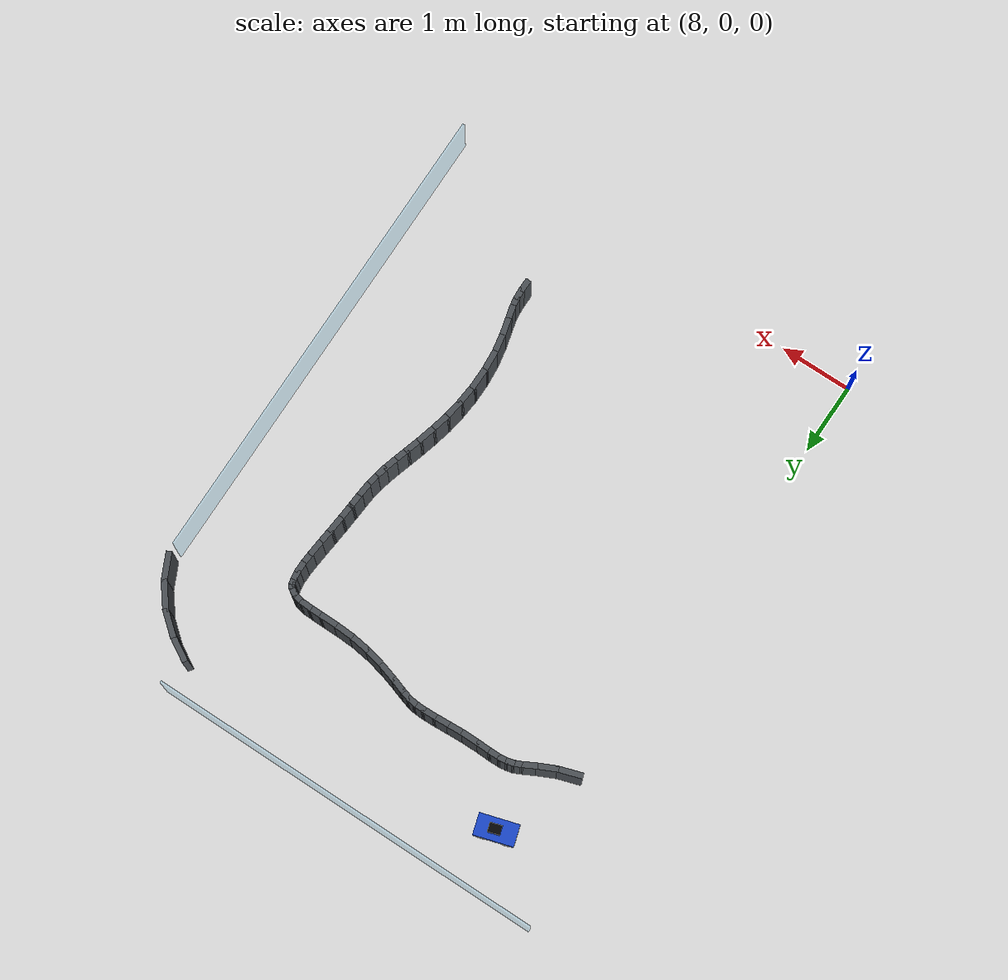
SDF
<sdf version="1.10">
 <world name="kookmin_xycar_track">
  <model name="slam_map">
   <static>true</static>
   <link name="route_wall_0000">
    <pose>8.857803 6.620077 0.400000 0 0 -2.708154841</pose>
    <collision name="collision">
     <geometry><box><size>0.144515 0.080000 0.800000</size></box></geometry>
    </collision>
    <visual name="visual">
     <geometry><box><size>0.144515 0.080000 0.800000</size></box></geometry>
     <material>
      <ambient>0.3000 0.3200 0.3400 1.0000</ambient>
      <diffuse>0.3000 0.3200 0.3400 1.0000</diffuse>
     </material>
    </visual>
   </link>
   <link name="route_wall_0001">
    <pose>8.728666 6.554908 0.400000 0 0 -2.655052837</pose>
    <collision name="collision">
     <geometry><box><size>0.224877 0.080000 0.800000</size></box></geometry>
    </collision>
    <visual name="visual">
     <geometry><box><size>0.224877 0.080000 0.800000</size></box></geometry>
     <material>
      <ambient>0.3000 0.3200 0.3400 1.0000</ambient>
      <diffuse>0.3000 0.3200 0.3400 1.0000</diffuse>
     </material>
    </visual>
   </link>
   <link name="route_wall_0002">
    <pose>8.525304 6.454000 0.400000 0 0 -2.698798356</pose>
    <collision name="collision">
     <geometry><box><size>0.309270 0.080000 0.800000</size></box></geometry>
    </collision>
    <visual name="visual">
     <geometry><box><size>0.309270 0.080000 0.800000</size></box></geometry>
     <material>
      <ambient>0.3000 0.3200 0.3400 1.0000</ambient>
      <diffuse>0.3000 0.3200 0.3400 1.0000</diffuse>
     </material>
    </visual>
   </link>
   <link name="route_wall_0003">
    <pose>8.250433 6.347098 0.400000 0 0 -2.830795801</pose>
    <collision name="collision">
     <geometry><box><size>0.361861 0.080000 0.800000</size></box></geometry>
    </collision>
    <visual name="visual">
     <geometry><box><size>0.361861 0.080000 0.800000</size></box></geometry>
     <material>
      <ambient>0.3000 0.3200 0.3400 1.0000</ambient>
      <diffuse>0.3000 0.3200 0.3400 1.0000</diffuse>
     </material>
    </visual>
   </link>
   <link name="route_wall_0165">
    <pose>12.215228 1.356631 0.400000 0 0 1.542945428</pose>
    <collision name="collision">
     <geometry><box><size>0.179662 0.080000 0.800000</size></box></geometry>
    </collision>
    <visual name="visual">
     <geometry><box><size>0.179662 0.080000 0.800000</size></box></geometry>
     <material>
      <ambient>0.3000 0.3200 0.3400 1.0000</ambient>
      <diffuse>0.3000 0.3200 0.3400 1.0000</diffuse>
     </material>
    </visual>
   </link>
   <link name="route_wall_0166">
    <pose>12.213796 1.489847 0.400000 0 0 1.623991036</pose>
    <collision name="collision">
     <geometry><box><size>0.167005 0.080000 0.800000</size></box></geometry>
    </collision>
    <visual name="visual">
     <geometry><box><size>0.167005 0.080000 0.800000</size></box></geometry>
     <material>
      <ambient>0.3000 0.3200 0.3400 1.0000</ambient>
      <diffuse>0.3000 0.3200 0.3400 1.0000</diffuse>
     </material>
    </visual>
   </link>
   <link name="route_wall_0167">
    <pose>12.201055 1.614097 0.400000 0 0 1.723530631</pose>
    <collision name="collision">
     <geometry><box><size>0.163108 0.080000 0.800000</size></box></geometry>
    </collision>
    <visual name="visual">
     <geometry><box><size>0.163108 0.080000 0.800000</size></box></geometry>
     <material>
      <ambient>0.3000 0.3200 0.3400 1.0000</ambient>
      <diffuse>0.3000 0.3200 0.3400 1.0000</diffuse>
     </material>
    </visual>
   </link>
   <link name="route_wall_0168">
    <pose>12.172343 1.751310 0.400000 0 0 1.818897459</pose>
    <collision name="collision">
     <geometry><box><size>0.197574 0.080000 0.800000</size></box></geometry>
    </collision>
    <visual name="visual">
     <geometry><box><size>0.197574 0.080000 0.800000</size></box></geometry>
     <material>
      <ambient>0.3000 0.3200 0.3400 1.0000</ambient>
      <diffuse>0.3000 0.3200 0.3400 1.0000</diffuse>
     </material>
    </visual>
   </link>
   <link name="route_wall_0169">
    <pose>12.125037 1.935905 0.400000 0 0 1.823616914</pose>
    <collision name="collision">
     <geometry><box><size>0.263547 0.080000 0.800000</size></box></geometry>
    </collision>
    <visual name="visual">
     <geometry><box><size>0.263547 0.080000 0.800000</size></box></geometry>
     <material>
      <ambient>0.3000 0.3200 0.3400 1.0000</ambient>
      <diffuse>0.3000 0.3200 0.3400 1.0000</diffuse>
     </material>
    </visual>
   </link>
   <link name="route_wall_0170">
    <pose>12.072218 2.179910 0.400000 0 0 1.751876424</pose>
    <collision name="collision">
     <geometry><box><size>0.316084 0.080000 0.800000</size></box></geometry>
    </collision>
    <visual name="visual">
     <geometry><box><size>0.316084 0.080000 0.800000</size></box></geometry>
     <material>
      <ambient>0.3000 0.3200 0.3400 1.0000</ambient>
      <diffuse>0.3000 0.3200 0.3400 1.0000</diffuse>
     </material>
    </visual>
   </link>
   <link name="route_wall_0171">
    <pose>12.037557 2.455541 0.400000 0 0 1.640761732</pose>
    <collision name="collision">
     <geometry><box><size>0.320378 0.080000 0.800000</size></box></geometry>
    </collision>
    <visual name="visual">
     <geometry><box><size>0.320378 0.080000 0.800000</size></box></geometry>
     <material>
      <ambient>0.3000 0.3200 0.3400 1.0000</ambient>
      <diffuse>0.3000 0.3200 0.3400 1.0000</diffuse>
     </material>
    </visual>
   </link>
   <link name="route_wall_0172">
    <pose>12.029612 2.728416 0.400000 0 0 1.556851094</pose>
    <collision name="collision">
     <geometry><box><size>0.306083 0.080000 0.800000</size></box></geometry>
    </collision>
    <visual name="visual">
     <geometry><box><size>0.306083 0.080000 0.800000</size></box></geometry>
     <material>
      <ambient>0.3000 0.3200 0.3400 1.0000</ambient>
      <diffuse>0.3000 0.3200 0.3400 1.0000</diffuse>
     </material>
    </visual>
   </link>
   <link name="route_wall_0173">
    <pose>12.043656 2.990133 0.400000 0 0 1.476365653</pose>
    <collision name="collision">
     <geometry><box><size>0.298529 0.080000 0.800000</size></box></geometry>
    </collision>
    <visual name="visual">
     <geometry><box><size>0.298529 0.080000 0.800000</size></box></geometry>
     <material>
      <ambient>0.3000 0.3200 0.3400 1.0000</ambient>
      <diffuse>0.3000 0.3200 0.3400 1.0000</diffuse>
     </material>
    </visual>
   </link>
   <link name="route_wall_0174">
    <pose>12.076551 3.247335 0.400000 0 0 1.411039199</pose>
    <collision name="collision">
     <geometry><box><size>0.300342 0.080000 0.800000</size></box></geometry>
    </collision>
    <visual name="visual">
     <geometry><box><size>0.300342 0.080000 0.800000</size></box></geometry>
     <material>
      <ambient>0.3000 0.3200 0.3400 1.0000</ambient>
      <diffuse>0.3000 0.3200 0.3400 1.0000</diffuse>
     </material>
    </visual>
   </link>
   <link name="route_wall_0175">
    <pose>12.126463 3.494427 0.400000 0 0 1.329318807</pose>
    <collision name="collision">
     <geometry><box><size>0.284245 0.080000 0.800000</size></box></geometry>
    </collision>
    <visual name="visual">
     <geometry><box><size>0.284245 0.080000 0.800000</size></box></geometry>
     <material>
      <ambient>0.3000 0.3200 0.3400 1.0000</ambient>
      <diffuse>0.3000 0.3200 0.3400 1.0000</diffuse>
     </material>
    </visual>
   </link>
   <link name="route_wall_0176">
    <pose>12.185113 3.720258 0.400000 0 0 1.302846089</pose>
    <collision name="collision">
     <geometry><box><size>0.262441 0.080000 0.800000</size></box></geometry>
    </collision>
    <visual name="visual">
     <geometry><box><size>0.262441 0.080000 0.800000</size></box></geometry>
     <material>
      <ambient>0.3000 0.3200 0.3400 1.0000</ambient>
      <diffuse>0.3000 0.3200 0.3400 1.0000</diffuse>
     </material>
    </visual>
   </link>
   <link name="route_wall_0177">
    <pose>12.246009 3.929303 0.400000 0 0 1.271145785</pose>
    <collision name="collision">
     <geometry><box><size>0.253083 0.080000 0.800000</size></box></geometry>
    </collision>
    <visual name="visual">
     <geometry><box><size>0.253083 0.080000 0.800000</size></box></geometry>
     <material>
      <ambient>0.3000 0.3200 0.3400 1.0000</ambient>
      <diffuse>0.3000 0.3200 0.3400 1.0000</diffuse>
     </material>
    </visual>
   </link>
   <link name="route_wall_0178">
    <pose>12.305600 4.121774 0.400000 0 0 1.269873895</pose>
    <collision name="collision">
     <geometry><box><size>0.229887 0.080000 0.800000</size></box></geometry>
    </collision>
    <visual name="visual">
     <geometry><box><size>0.229887 0.080000 0.800000</size></box></geometry>
     <material>
      <ambient>0.3000 0.3200 0.3400 1.0000</ambient>
      <diffuse>0.3000 0.3200 0.3400 1.0000</diffuse>
     </material>
    </visual>
   </link>
   <link name="route_wall_0179">
    <pose>12.356835 4.293552 0.400000 0 0 1.293379234</pose>
    <collision name="collision">
     <geometry><box><size>0.208649 0.080000 0.800000</size></box></geometry>
    </collision>
    <visual name="visual">
     <geometry><box><size>0.208649 0.080000 0.800000</size></box></geometry>
     <material>
      <ambient>0.3000 0.3200 0.3400 1.0000</ambient>
      <diffuse>0.3000 0.3200 0.3400 1.0000</diffuse>
     </material>
    </visual>
   </link>
   <link name="route_wall_0180">
    <pose>12.397405 4.451099 0.400000 0 0 1.346065434</pose>
    <collision name="collision">
     <geometry><box><size>0.196837 0.080000 0.800000</size></box></geometry>
    </collision>
    <visual name="visual">
     <geometry><box><size>0.196837 0.080000 0.800000</size></box></geometry>
     <material>
      <ambient>0.3000 0.3200 0.3400 1.0000</ambient>
      <diffuse>0.3000 0.3200 0.3400 1.0000</diffuse>
     </material>
    </visual>
   </link>
   <link name="route_wall_0181">
    <pose>12.427581 4.600193 0.400000 0 0 1.397714698</pose>
    <collision name="collision">
     <geometry><box><size>0.187499 0.080000 0.800000</size></box></geometry>
    </collision>
    <visual name="visual">
     <geometry><box><size>0.187499 0.080000 0.800000</size></box></geometry>
     <material>
      <ambient>0.3000 0.3200 0.3400 1.0000</ambient>
      <diffuse>0.3000 0.3200 0.3400 1.0000</diffuse>
     </material>
    </visual>
   </link>
   <link name="route_wall_0182">
    <pose>12.447808 4.753049 0.400000 0 0 1.477243993</pose>
    <collision name="collision">
     <geometry><box><size>0.201121 0.080000 0.800000</size></box></geometry>
    </collision>
    <visual name="visual">
     <geometry><box><size>0.201121 0.080000 0.800000</size></box></geometry>
     <material>
      <ambient>0.3000 0.3200 0.3400 1.0000</ambient>
      <diffuse>0.3000 0.3200 0.3400 1.0000</diffuse>
     </material>
    </visual>
   </link>
   <link name="route_wall_0183">
    <pose>12.462801 4.930547 0.400000 0 0 1.494188101</pose>
    <collision name="collision">
     <geometry><box><size>0.235151 0.080000 0.800000</size></box></geometry>
    </collision>
    <visual name="visual">
     <geometry><box><size>0.235151 0.080000 0.800000</size></box></geometry>
     <material>
      <ambient>0.3000 0.3200 0.3400 1.0000</ambient>
      <diffuse>0.3000 0.3200 0.3400 1.0000</diffuse>
     </material>
    </visual>
   </link>
   <link name="route_wall_0184">
    <pose>12.479207 5.131783 0.400000 0 0 1.485022613</pose>
    <collision name="collision">
     <geometry><box><size>0.248660 0.080000 0.800000</size></box></geometry>
    </collision>
    <visual name="visual">
     <geometry><box><size>0.248660 0.080000 0.800000</size></box></geometry>
     <material>
      <ambient>0.3000 0.3200 0.3400 1.0000</ambient>
      <diffuse>0.3000 0.3200 0.3400 1.0000</diffuse>
     </material>
    </visual>
   </link>
   <link name="route_wall_0185">
    <pose>12.498401 5.339259 0.400000 0 0 1.472046801</pose>
    <collision name="collision">
     <geometry><box><size>0.248071 0.080000 0.800000</size></box></geometry>
    </collision>
    <visual name="visual">
     <geometry><box><size>0.248071 0.080000 0.800000</size></box></geometry>
     <material>
      <ambient>0.3000 0.3200 0.3400 1.0000</ambient>
      <diffuse>0.3000 0.3200 0.3400 1.0000</diffuse>
     </material>
    </visual>
   </link>
   <link name="route_wall_0186">
    <pose>12.519182 5.541377 0.400000 0 0 1.464448859</pose>
    <collision name="collision">
     <geometry><box><size>0.238300 0.080000 0.800000</size></box></geometry>
    </collision>
    <visual name="visual">
     <geometry><box><size>0.238300 0.080000 0.800000</size></box></geometry>
     <material>
      <ambient>0.3000 0.3200 0.3400 1.0000</ambient>
      <diffuse>0.3000 0.3200 0.3400 1.0000</diffuse>
     </material>
    </visual>
   </link>
   <link name="route_wall_0187">
    <pose>12.538556 5.732145 0.400000 0 0 1.475084839</pose>
    <collision name="collision">
     <geometry><box><size>0.225204 0.080000 0.800000</size></box></geometry>
    </collision>
    <visual name="visual">
     <geometry><box><size>0.225204 0.080000 0.800000</size></box></geometry>
     <material>
      <ambient>0.3000 0.3200 0.3400 1.0000</ambient>
      <diffuse>0.3000 0.3200 0.3400 1.0000</diffuse>
     </material>
    </visual>
   </link>
   <link name="route_wall_0188">
    <pose>12.553315 5.904306 0.400000 0 0 1.497057670</pose>
    <collision name="collision">
     <geometry><box><size>0.200401 0.080000 0.800000</size></box></geometry>
    </collision>
    <visual name="visual">
     <geometry><box><size>0.200401 0.080000 0.800000</size></box></geometry>
     <material>
      <ambient>0.3000 0.3200 0.3400 1.0000</ambient>
      <diffuse>0.3000 0.3200 0.3400 1.0000</diffuse>
     </material>
    </visual>
   </link>
   <link name="route_wall_0189">
    <pose>12.559600 6.045725 0.400000 0 0 1.564668238</pose>
    <collision name="collision">
     <geometry><box><size>0.162875 0.080000 0.800000</size></box></geometry>
    </collision>
    <visual name="visual">
     <geometry><box><size>0.162875 0.080000 0.800000</size></box></geometry>
     <material>
      <ambient>0.3000 0.3200 0.3400 1.0000</ambient>
      <diffuse>0.3000 0.3200 0.3400 1.0000</diffuse>
     </material>
    </visual>
   </link>
   <link name="route_wall_0190">
    <pose>12.554341 6.156494 0.400000 0 0 1.684524513</pose>
    <collision name="collision">
     <geometry><box><size>0.139307 0.080000 0.800000</size></box></geometry>
    </collision>
    <visual name="visual">
     <geometry><box><size>0.139307 0.080000 0.800000</size></box></geometry>
     <material>
      <ambient>0.3000 0.3200 0.3400 1.0000</ambient>
      <diffuse>0.3000 0.3200 0.3400 1.0000</diffuse>
     </material>
    </visual>
   </link>
   <link name="route_wall_0191">
    <pose>12.540862 6.240587 0.400000 0 0 1.792748741</pose>
    <collision name="collision">
     <geometry><box><size>0.111270 0.080000 0.800000</size></box></geometry>
    </collision>
    <visual name="visual">
     <geometry><box><size>0.111270 0.080000 0.800000</size></box></geometry>
     <material>
      <ambient>0.3000 0.3200 0.3400 1.0000</ambient>
      <diffuse>0.3000 0.3200 0.3400 1.0000</diffuse>
     </material>
    </visual>
   </link>
   <link name="route_wall_0192">
    <pose>12.527048 6.290315 0.400000 0 0 1.950287643</pose>
    <collision name="collision">
     <geometry><box><size>0.072226 0.080000 0.800000</size></box></geometry>
    </collision>
    <visual name="visual">
     <geometry><box><size>0.072226 0.080000 0.800000</size></box></geometry>
     <material>
      <ambient>0.3000 0.3200 0.3400 1.0000</ambient>
      <diffuse>0.3000 0.3200 0.3400 1.0000</diffuse>
     </material>
    </visual>
   </link>
   <link name="route_wall_0193">
    <pose>12.516386 6.311352 0.400000 0 0 2.228949347</pose>
    <collision name="collision">
     <geometry><box><size>0.055346 0.080000 0.800000</size></box></geometry>
    </collision>
    <visual name="visual">
     <geometry><box><size>0.055346 0.080000 0.800000</size></box></geometry>
     <material>
      <ambient>0.3000 0.3200 0.3400 1.0000</ambient>
      <diffuse>0.3000 0.3200 0.3400 1.0000</diffuse>
     </material>
    </visual>
   </link>
   <link name="route_wall_0194">
    <pose>12.493362 6.330731 0.400000 0 0 2.513629720</pose>
    <collision name="collision">
     <geometry><box><size>0.085306 0.080000 0.800000</size></box></geometry>
    </collision>
    <visual name="visual">
     <geometry><box><size>0.085306 0.080000 0.800000</size></box></geometry>
     <material>
      <ambient>0.3000 0.3200 0.3400 1.0000</ambient>
      <diffuse>0.3000 0.3200 0.3400 1.0000</diffuse>
     </material>
    </visual>
   </link>
   <link name="route_wall_0195">
    <pose>12.450388 6.359449 0.400000 0 0 2.582730619</pose>
    <collision name="collision">
     <geometry><box><size>0.098128 0.080000 0.800000</size></box></geometry>
    </collision>
    <visual name="visual">
     <geometry><box><size>0.098128 0.080000 0.800000</size></box></geometry>
     <material>
      <ambient>0.3000 0.3200 0.3400 1.0000</ambient>
      <diffuse>0.3000 0.3200 0.3400 1.0000</diffuse>
     </material>
    </visual>
   </link>
   <link name="route_wall_0196">
    <pose>12.401196 6.383089 0.400000 0 0 2.818150600</pose>
    <collision name="collision">
     <geometry><box><size>0.091785 0.080000 0.800000</size></box></geometry>
    </collision>
    <visual name="visual">
     <geometry><box><size>0.091785 0.080000 0.800000</size></box></geometry>
     <material>
      <ambient>0.3000 0.3200 0.3400 1.0000</ambient>
      <diffuse>0.3000 0.3200 0.3400 1.0000</diffuse>
     </material>
    </visual>
   </link>
   <link name="route_wall_0197">
    <pose>12.335351 6.397758 0.400000 0 0 2.986909411</pose>
    <collision name="collision">
     <geometry><box><size>0.123590 0.080000 0.800000</size></box></geometry>
    </collision>
    <visual name="visual">
     <geometry><box><size>0.123590 0.080000 0.800000</size></box></geometry>
     <material>
      <ambient>0.3000 0.3200 0.3400 1.0000</ambient>
      <diffuse>0.3000 0.3200 0.3400 1.0000</diffuse>
     </material>
    </visual>
   </link>
   <link name="route_wall_0198">
    <pose>12.227993 6.407383 0.400000 0 0 3.093407464</pose>
    <collision name="collision">
     <geometry><box><size>0.172276 0.080000 0.800000</size></box></geometry>
    </collision>
    <visual name="visual">
     <geometry><box><size>0.172276 0.080000 0.800000</size></box></geometry>
     <material>
      <ambient>0.3000 0.3200 0.3400 1.0000</ambient>
      <diffuse>0.3000 0.3200 0.3400 1.0000</diffuse>
     </material>
    </visual>
   </link>
   <link name="route_wall_0199">
    <pose>12.073632 6.411127 0.400000 0 0 3.135263260</pose>
    <collision name="collision">
     <geometry><box><size>0.216603 0.080000 0.800000</size></box></geometry>
    </collision>
    <visual name="visual">
     <geometry><box><size>0.216603 0.080000 0.800000</size></box></geometry>
     <material>
      <ambient>0.3000 0.3200 0.3400 1.0000</ambient>
      <diffuse>0.3000 0.3200 0.3400 1.0000</diffuse>
     </material>
    </visual>
   </link>
   <link name="route_wall_0200">
    <pose>11.878543 6.411790 0.400000 0 0 3.140614301</pose>
    <collision name="collision">
     <geometry><box><size>0.253579 0.080000 0.800000</size></box></geometry>
    </collision>
    <visual name="visual">
     <geometry><box><size>0.253579 0.080000 0.800000</size></box></geometry>
     <material>
      <ambient>0.3000 0.3200 0.3400 1.0000</ambient>
      <diffuse>0.3000 0.3200 0.3400 1.0000</diffuse>
     </material>
    </visual>
   </link>
   <link name="route_wall_0201">
    <pose>11.645092 6.417521 0.400000 0 0 3.097203458</pose>
    <collision name="collision">
     <geometry><box><size>0.293573 0.080000 0.800000</size></box></geometry>
    </collision>
    <visual name="visual">
     <geometry><box><size>0.293573 0.080000 0.800000</size></box></geometry>
     <material>
      <ambient>0.3000 0.3200 0.3400 1.0000</ambient>
      <diffuse>0.3000 0.3200 0.3400 1.0000</diffuse>
     </material>
    </visual>
   </link>
   <link name="route_wall_0202">
    <pose>11.382449 6.441282 0.400000 0 0 3.009011291</pose>
    <collision name="collision">
     <geometry><box><size>0.314370 0.080000 0.800000</size></box></geometry>
    </collision>
    <visual name="visual">
     <geometry><box><size>0.314370 0.080000 0.800000</size></box></geometry>
     <material>
      <ambient>0.3000 0.3200 0.3400 1.0000</ambient>
      <diffuse>0.3000 0.3200 0.3400 1.0000</diffuse>
     </material>
    </visual>
   </link>
   <link name="route_wall_0203">
    <pose>11.116497 6.489002 0.400000 0 0 2.917778327</pose>
    <collision name="collision">
     <geometry><box><size>0.306592 0.080000 0.800000</size></box></geometry>
    </collision>
    <visual name="visual">
     <geometry><box><size>0.306592 0.080000 0.800000</size></box></geometry>
     <material>
      <ambient>0.3000 0.3200 0.3400 1.0000</ambient>
      <diffuse>0.3000 0.3200 0.3400 1.0000</diffuse>
     </material>
    </visual>
   </link>
   <link name="route_wall_0204">
    <pose>10.871857 6.553405 0.400000 0 0 2.846798220</pose>
    <collision name="collision">
     <geometry><box><size>0.279677 0.080000 0.800000</size></box></geometry>
    </collision>
    <visual name="visual">
     <geometry><box><size>0.279677 0.080000 0.800000</size></box></geometry>
     <material>
      <ambient>0.3000 0.3200 0.3400 1.0000</ambient>
      <diffuse>0.3000 0.3200 0.3400 1.0000</diffuse>
     </material>
    </visual>
   </link>
   <link name="route_wall_0205">
    <pose>10.668070 6.618205 0.400000 0 0 2.817063626</pose>
    <collision name="collision">
     <geometry><box><size>0.228053 0.080000 0.800000</size></box></geometry>
    </collision>
    <visual name="visual">
     <geometry><box><size>0.228053 0.080000 0.800000</size></box></geometry>
     <material>
      <ambient>0.3000 0.3200 0.3400 1.0000</ambient>
      <diffuse>0.3000 0.3200 0.3400 1.0000</diffuse>
     </material>
    </visual>
   </link>
   <link name="route_wall_0206">
    <pose>10.519088 6.665355 0.400000 0 0 2.862305035</pose>
    <collision name="collision">
     <geometry><box><size>0.164554 0.080000 0.800000</size></box></geometry>
    </collision>
    <visual name="visual">
     <geometry><box><size>0.164554 0.080000 0.800000</size></box></geometry>
     <material>
      <ambient>0.3000 0.3200 0.3400 1.0000</ambient>
      <diffuse>0.3000 0.3200 0.3400 1.0000</diffuse>
     </material>
    </visual>
   </link>
   <link name="route_wall_0207">
    <pose>10.408680 6.689377 0.400000 0 0 3.006797083</pose>
    <collision name="collision">
     <geometry><box><size>0.142014 0.080000 0.800000</size></box></geometry>
    </collision>
    <visual name="visual">
     <geometry><box><size>0.142014 0.080000 0.800000</size></box></geometry>
     <material>
      <ambient>0.3000 0.3200 0.3400 1.0000</ambient>
      <diffuse>0.3000 0.3200 0.3400 1.0000</diffuse>
     </material>
    </visual>
   </link>
   <link name="route_wall_0208">
    <pose>10.292583 6.697691 0.400000 0 0 3.119338408</pose>
    <collision name="collision">
     <geometry><box><size>0.171137 0.080000 0.800000</size></box></geometry>
    </collision>
    <visual name="visual">
     <geometry><box><size>0.171137 0.080000 0.800000</size></box></geometry>
     <material>
      <ambient>0.3000 0.3200 0.3400 1.0000</ambient>
      <diffuse>0.3000 0.3200 0.3400 1.0000</diffuse>
     </material>
    </visual>
   </link>
   <link name="route_wall_0209">
    <pose>10.144605 6.696652 0.400000 0 0 -3.111298819</pose>
    <collision name="collision">
     <geometry><box><size>0.204929 0.080000 0.800000</size></box></geometry>
    </collision>
    <visual name="visual">
     <geometry><box><size>0.204929 0.080000 0.800000</size></box></geometry>
     <material>
      <ambient>0.3000 0.3200 0.3400 1.0000</ambient>
      <diffuse>0.3000 0.3200 0.3400 1.0000</diffuse>
     </material>
    </visual>
   </link>
   <link name="route_wall_0210">
    <pose>9.967374 6.688799 0.400000 0 0 -3.085160259</pose>
    <collision name="collision">
     <geometry><box><size>0.229910 0.080000 0.800000</size></box></geometry>
    </collision>
    <visual name="visual">
     <geometry><box><size>0.229910 0.080000 0.800000</size></box></geometry>
     <material>
      <ambient>0.3000 0.3200 0.3400 1.0000</ambient>
      <diffuse>0.3000 0.3200 0.3400 1.0000</diffuse>
     </material>
    </visual>
   </link>
   <link name="route_wall_0211">
    <pose>9.761313 6.677728 0.400000 0 0 -3.090270517</pose>
    <collision name="collision">
     <geometry><box><size>0.262807 0.080000 0.800000</size></box></geometry>
    </collision>
    <visual name="visual">
     <geometry><box><size>0.262807 0.080000 0.800000</size></box></geometry>
     <material>
      <ambient>0.3000 0.3200 0.3400 1.0000</ambient>
      <diffuse>0.3000 0.3200 0.3400 1.0000</diffuse>
     </material>
    </visual>
   </link>
   <link name="route_wall_0212">
    <pose>9.533835 6.671986 0.400000 0 0 -3.141359018</pose>
    <collision name="collision">
     <geometry><box><size>0.272444 0.080000 0.800000</size></box></geometry>
    </collision>
    <visual name="visual">
     <geometry><box><size>0.272444 0.080000 0.800000</size></box></geometry>
     <material>
      <ambient>0.3000 0.3200 0.3400 1.0000</ambient>
      <diffuse>0.3000 0.3200 0.3400 1.0000</diffuse>
     </material>
    </visual>
   </link>
   <link name="route_wall_0213">
    <pose>9.322902 6.674695 0.400000 0 0 3.112708199</pose>
    <collision name="collision">
     <geometry><box><size>0.229501 0.080000 0.800000</size></box></geometry>
    </collision>
    <visual name="visual">
     <geometry><box><size>0.229501 0.080000 0.800000</size></box></geometry>
     <material>
      <ambient>0.3000 0.3200 0.3400 1.0000</ambient>
      <diffuse>0.3000 0.3200 0.3400 1.0000</diffuse>
     </material>
    </visual>
   </link>
   <link name="route_wall_0214">
    <pose>9.160271 6.676199 0.400000 0 0 -3.123451567</pose>
    <collision name="collision">
     <geometry><box><size>0.175862 0.080000 0.800000</size></box></geometry>
    </collision>
    <visual name="visual">
     <geometry><box><size>0.175862 0.080000 0.800000</size></box></geometry>
     <material>
      <ambient>0.3000 0.3200 0.3400 1.0000</ambient>
      <diffuse>0.3000 0.3200 0.3400 1.0000</diffuse>
     </material>
    </visual>
   </link>
   <link name="route_wall_0215">
    <pose>9.039344 6.668350 0.400000 0 0 -3.017394735</pose>
    <collision name="collision">
     <geometry><box><size>0.146836 0.080000 0.800000</size></box></geometry>
    </collision>
    <visual name="visual">
     <geometry><box><size>0.146836 0.080000 0.800000</size></box></geometry>
     <material>
      <ambient>0.3000 0.3200 0.3400 1.0000</ambient>
      <diffuse>0.3000 0.3200 0.3400 1.0000</diffuse>
     </material>
    </visual>
   </link>
   <link name="route_wall_0216">
    <pose>8.945783 6.651879 0.400000 0 0 -2.903241539</pose>
    <collision name="collision">
     <geometry><box><size>0.123469 0.080000 0.800000</size></box></geometry>
    </collision>
    <visual name="visual">
     <geometry><box><size>0.123469 0.080000 0.800000</size></box></geometry>
     <material>
      <ambient>0.3000 0.3200 0.3400 1.0000</ambient>
      <diffuse>0.3000 0.3200 0.3400 1.0000</diffuse>
     </material>
    </visual>
   </link>
   <link name="route_wall_0374">
    <pose>13.994594 6.984436 0.400000 0 0 2.007119410</pose>
    <collision name="collision">
     <geometry><box><size>0.406420 0.080000 0.800000</size></box></geometry>
    </collision>
    <visual name="visual">
     <geometry><box><size>0.406420 0.080000 0.800000</size></box></geometry>
     <material>
      <ambient>0.3000 0.3200 0.3400 1.0000</ambient>
      <diffuse>0.3000 0.3200 0.3400 1.0000</diffuse>
     </material>
    </visual>
   </link>
   <link name="route_wall_0375">
    <pose>13.800301 7.301940 0.400000 0 0 2.227979798</pose>
    <collision name="collision">
     <geometry><box><size>0.422610 0.080000 0.800000</size></box></geometry>
    </collision>
    <visual name="visual">
     <geometry><box><size>0.422610 0.080000 0.800000</size></box></geometry>
     <material>
      <ambient>0.3000 0.3200 0.3400 1.0000</ambient>
      <diffuse>0.3000 0.3200 0.3400 1.0000</diffuse>
     </material>
    </visual>
   </link>
   <link name="route_wall_0376">
    <pose>13.547755 7.566808 0.400000 0 0 2.445368168</pose>
    <collision name="collision">
     <geometry><box><size>0.393670 0.080000 0.800000</size></box></geometry>
    </collision>
    <visual name="visual">
     <geometry><box><size>0.393670 0.080000 0.800000</size></box></geometry>
     <material>
      <ambient>0.3000 0.3200 0.3400 1.0000</ambient>
      <diffuse>0.3000 0.3200 0.3400 1.0000</diffuse>
     </material>
    </visual>
   </link>
   <link name="route_wall_0377">
    <pose>13.265039 7.766491 0.400000 0 0 2.610969016</pose>
    <collision name="collision">
     <geometry><box><size>0.380955 0.080000 0.800000</size></box></geometry>
    </collision>
    <visual name="visual">
     <geometry><box><size>0.380955 0.080000 0.800000</size></box></geometry>
     <material>
      <ambient>0.3000 0.3200 0.3400 1.0000</ambient>
      <diffuse>0.3000 0.3200 0.3400 1.0000</diffuse>
     </material>
    </visual>
   </link>
   <link name="glass_right">
    <pose>14.070000 3.350000 0.450000 0 0 1.570796327</pose>
    <collision name="low_curb_collision">
     <pose>0 0 -0.430000 0 0 0</pose>
     <geometry><box><size>6.700000 0.060000 0.040000</size></box></geometry>
    </collision>
    <visual name="glass_visual">
     <geometry><box><size>6.700000 0.030000 0.900000</size></box></geometry>
     <transparency>0.72</transparency>
     <cast_shadows>false</cast_shadows>
     <material>
      <ambient>0.3500 0.7000 0.8500 0.2800</ambient>
      <diffuse>0.3500 0.7000 0.8500 0.2800</diffuse>
     </material>
    </visual>
   </link>
   <link name="glass_upper_right">
    <pose>10.400000 8.250000 0.450000 0 0 0.000000000</pose>
    <collision name="low_curb_collision">
     <pose>0 0 -0.430000 0 0 0</pose>
     <geometry><box><size>5.600000 0.060000 0.040000</size></box></geometry>
    </collision>
    <visual name="glass_visual">
     <geometry><box><size>5.600000 0.030000 0.900000</size></box></geometry>
     <transparency>0.72</transparency>
     <cast_shadows>false</cast_shadows>
     <material>
      <ambient>0.3500 0.7000 0.8500 0.2800</ambient>
      <diffuse>0.3500 0.7000 0.8500 0.2800</diffuse>
     </material>
    </visual>
   </link>
  </model>
  <model name="xycar_ackermann">
   <pose>8.649270 7.420010 0.05 0 0 -2.852326824</pose>
   <link name="chassis">
    <pose>0 0 0.13500000000000001 0 0 0</pose>
    <inertial>
     <mass>2.2000000000000002</mass>
     <inertia><ixx>0.055</ixx><ixy>0</ixy><ixz>0</ixz><iyy>0.13</iyy><iyz>0</iyz><izz>0.16</izz></inertia>
    </inertial>
    <collision name="collision">
     <geometry><box><size>0.55000000000000004 0.29999999999999999 0.12</size></box></geometry>
    </collision>
    <visual name="body">
     <visibility_flags>2</visibility_flags>
     <geometry><box><size>0.55000000000000004 0.29999999999999999 0.12</size></box></geometry>
     <material>
      <ambient>0.100000001 0.280000001 0.800000012 1</ambient>
      <diffuse>0.100000001 0.280000001 0.800000012 1</diffuse>
     </material>
    </visual>
    <visual name="mini_pc_body">
     <visibility_flags>2</visibility_flags>
     <pose>-0.02 0 0.115 0 0 0</pose>
     <geometry><box><size>0.17000000000000001 0.13 0.070000000000000007</size></box></geometry>
     <material>
      <ambient>0.0199999996 0.0199999996 0.0199999996 1</ambient>
      <diffuse>0.0199999996 0.0199999996 0.0199999996 1</diffuse>
     </material>
    </visual>
    <visual name="lidar_body">
     <pose>0.22500000000000001 0 -0.012500000000000001 0 0 0</pose>
     <geometry>
      <cylinder><length>0.035000000000000003</length><radius>0.040000000000000001</radius></cylinder>
     </geometry>
     <material>
      <ambient>0.00999999978 0.00999999978 0.00999999978 1</ambient>
      <diffuse>0.00999999978 0.00999999978 0.00999999978 1</diffuse>
     </material>
    </visual>
    <sensor name="front_camera" type="camera">
     <pose>0.12 0 0.095 0 0.10000000000000001 0</pose>
     <topic>/image_raw</topic>
     <update_rate>30</update_rate>
     <enable_metrics>false</enable_metrics>
     <camera name="__default__">
      <horizontal_fov>1.7968</horizontal_fov>
      <image>
       <width>1280</width>
       <height>1024</height>
       <format>RGB_INT8</format>
       <anti_aliasing>4</anti_aliasing>
      </image>
      <camera_info_topic>/camera_info</camera_info_topic>
      <triggered>false</triggered>
      <clip><near>0.029999999999999999</near><far>20</far></clip>
      <save enabled="false"><path>__default__</path></save>
      <visibility_mask>4294967293</visibility_mask>
      <noise><type>none</type><mean>0</mean><stddev>0</stddev></noise>
      <distortion><k1>0</k1><k2>0</k2><k3>0</k3><p1>0</p1><p2>0</p2><center>0.5 0.5</center></distortion>
      <lens>
       <type>equidistant</type>
       <scale_to_hfov>true</scale_to_hfov>
       <cutoff_angle>1.5707963267948966</cutoff_angle>
       <env_texture_size>512</env_texture_size>
      </lens>
     </camera>
    </sensor>
    <sensor name="lidar" type="gpu_lidar">
     <pose>0.22500000000000001 0 0.0050000000000000001 0 0 0</pose>
     <topic>/scan</topic>
     <update_rate>10</update_rate>
     <enable_metrics>false</enable_metrics>
     <lidar>
      <scan>
       <horizontal>
        <samples>505</samples>
        <resolution>1</resolution>
        <min_angle>-3.1415899999999999</min_angle>
        <max_angle>3.1415899999999999</max_angle>
       </horizontal>
       <vertical>
        <samples>1</samples>
        <min_angle>0</min_angle>
        <max_angle>0</max_angle>
        <resolution>1</resolution>
       </vertical>
      </scan>
      <range><min>0.10000000000000001</min><max>12</max><resolution>0.01</resolution></range>
      <noise><type>none</type><mean>0</mean><stddev>0</stddev></noise>
      <visibility_mask>4294967295</visibility_mask>
     </lidar>
    </sensor>
   </link>
   <link name="front_left_wheel_steering_link">
    <pose>0.16000000000000014 0.12000000000000011 0.059999999999999998 0 0 0</pose>
    <inertial>
     <mass>0.080000000000000002</mass>
     <inertia>
      <ixx>0.00020000000000000001</ixx>
      <iyy>0.00020000000000000001</iyy>
      <izz>0.00020000000000000001</izz>
      <ixy>0</ixy>
      <ixz>0</ixz>
      <iyz>0</iyz>
     </inertia>
    </inertial>
   </link>
   <link name="front_right_wheel_steering_link">
    <pose>0.16000000000000014 -0.12000000000000011 0.059999999999999998 0 0 0</pose>
    <inertial>
     <mass>0.080000000000000002</mass>
     <inertia>
      <ixx>0.00020000000000000001</ixx>
      <iyy>0.00020000000000000001</iyy>
      <izz>0.00020000000000000001</izz>
      <ixy>0</ixy>
      <ixz>0</ixz>
      <iyz>0</iyz>
     </inertia>
    </inertial>
   </link>
   <link name="front_left_wheel">
    <pose>0.16000000000000014 0.13250000000000028 0.059999999999999998 -1.5706999999999995 0 0</pose>
    <inertial>
     <mass>0.12</mass>
     <inertia>
      <ixx>0.00040000000000000002</ixx>
      <iyy>0.00040000000000000002</iyy>
      <izz>0.00025000000000000001</izz>
      <ixy>0</ixy>
      <ixz>0</ixz>
      <iyz>0</iyz>
     </inertia>
    </inertial>
    <collision name="collision">
     <geometry>
      <cylinder><length>0.035000000000000003</length><radius>0.059999999999999998</radius></cylinder>
     </geometry>
    </collision>
    <visual name="visual">
     <visibility_flags>2</visibility_flags>
     <geometry>
      <cylinder><length>0.035000000000000003</length><radius>0.059999999999999998</radius></cylinder>
     </geometry>
     <material>
      <ambient>0.0299999993 0.0299999993 0.0299999993 1</ambient>
      <diffuse>0.0299999993 0.0299999993 0.0299999993 1</diffuse>
     </material>
    </visual>
   </link>
   <link name="front_right_wheel">
    <pose>0.16000000000000014 -0.13250000000000028 0.059999999999999998 -1.5706999999999995 0 0</pose>
    <inertial>
     <mass>0.12</mass>
     <inertia>
      <ixx>0.00040000000000000002</ixx>
      <iyy>0.00040000000000000002</iyy>
      <izz>0.00025000000000000001</izz>
      <ixy>0</ixy>
      <ixz>0</ixz>
      <iyz>0</iyz>
     </inertia>
    </inertial>
    <collision name="collision">
     <geometry>
      <cylinder><length>0.035000000000000003</length><radius>0.059999999999999998</radius></cylinder>
     </geometry>
    </collision>
    <visual name="visual">
     <visibility_flags>2</visibility_flags>
     <geometry>
      <cylinder><length>0.035000000000000003</length><radius>0.059999999999999998</radius></cylinder>
     </geometry>
     <material>
      <ambient>0.0299999993 0.0299999993 0.0299999993 1</ambient>
      <diffuse>0.0299999993 0.0299999993 0.0299999993 1</diffuse>
     </material>
    </visual>
   </link>
   <link name="rear_left_wheel">
    <pose>-0.16000000000000014 0.13250000000000028 0.059999999999999998 -1.5706999999999995 0 0</pose>
    <inertial>
     <mass>0.12</mass>
     <inertia>
      <ixx>0.00040000000000000002</ixx>
      <iyy>0.00040000000000000002</iyy>
      <izz>0.00025000000000000001</izz>
      <ixy>0</ixy>
      <ixz>0</ixz>
      <iyz>0</iyz>
     </inertia>
    </inertial>
    <collision name="collision">
     <geometry>
      <cylinder><length>0.035000000000000003</length><radius>0.059999999999999998</radius></cylinder>
     </geometry>
    </collision>
    <visual name="visual">
     <visibility_flags>2</visibility_flags>
     <geometry>
      <cylinder><length>0.035000000000000003</length><radius>0.059999999999999998</radius></cylinder>
     </geometry>
     <material>
      <ambient>0.0299999993 0.0299999993 0.0299999993 1</ambient>
      <diffuse>0.0299999993 0.0299999993 0.0299999993 1</diffuse>
     </material>
    </visual>
   </link>
   <link name="rear_right_wheel">
    <pose>-0.16000000000000014 -0.13250000000000028 0.059999999999999998 -1.5706999999999995 0 0</pose>
    <inertial>
     <mass>0.12</mass>
     <inertia>
      <ixx>0.00040000000000000002</ixx>
      <iyy>0.00040000000000000002</iyy>
      <izz>0.00025000000000000001</izz>
      <ixy>0</ixy>
      <ixz>0</ixz>
      <iyz>0</iyz>
     </inertia>
    </inertial>
    <collision name="collision">
     <geometry>
      <cylinder><length>0.035000000000000003</length><radius>0.059999999999999998</radius></cylinder>
     </geometry>
    </collision>
    <visual name="visual">
     <visibility_flags>2</visibility_flags>
     <geometry>
      <cylinder><length>0.035000000000000003</length><radius>0.059999999999999998</radius></cylinder>
     </geometry>
     <material>
      <ambient>0.0299999993 0.0299999993 0.0299999993 1</ambient>
      <diffuse>0.0299999993 0.0299999993 0.0299999993 1</diffuse>
     </material>
    </visual>
   </link>
   <joint name="front_left_wheel_steering_joint" type="revolute">
    <parent>chassis</parent>
    <child>front_left_wheel_steering_link</child>
    <axis>
     <xyz>0 0 1</xyz>
     <limit>
      <lower>-0.69999999999999996</lower>
      <upper>0.69999999999999996</upper>
      <effort>8</effort>
      <velocity>2</velocity>
      <stiffness>100000000</stiffness>
      <dissipation>1</dissipation>
     </limit>
     <dynamics>
      <spring_reference>0</spring_reference>
      <spring_stiffness>0</spring_stiffness>
      <damping>0</damping>
      <friction>0</friction>
     </dynamics>
    </axis>
   </joint>
   <joint name="front_right_wheel_steering_joint" type="revolute">
    <parent>chassis</parent>
    <child>front_right_wheel_steering_link</child>
    <axis>
     <xyz>0 0 1</xyz>
     <limit>
      <lower>-0.69999999999999996</lower>
      <upper>0.69999999999999996</upper>
      <effort>8</effort>
      <velocity>2</velocity>
      <stiffness>100000000</stiffness>
      <dissipation>1</dissipation>
     </limit>
     <dynamics>
      <spring_reference>0</spring_reference>
      <spring_stiffness>0</spring_stiffness>
      <damping>0</damping>
      <friction>0</friction>
     </dynamics>
    </axis>
   </joint>
   <joint name="front_left_wheel_joint" type="revolute">
    <parent>front_left_wheel_steering_link</parent>
    <child>front_left_wheel</child>
    <axis>
     <xyz>0 0 1</xyz>
     <limit>
      <lower>-1.7976900000000001e+308</lower>
      <upper>1.7976900000000001e+308</upper>
      <effort>inf</effort>
      <velocity>inf</velocity>
      <stiffness>100000000</stiffness>
      <dissipation>1</dissipation>
     </limit>
     <dynamics>
      <spring_reference>0</spring_reference>
      <spring_stiffness>0</spring_stiffness>
      <damping>0</damping>
      <friction>0</friction>
     </dynamics>
    </axis>
    <pose>0 -6.2450045135165055e-17 2.7755575615628914e-17 0 0 0</pose>
   </joint>
   <joint name="front_right_wheel_joint" type="revolute">
    <parent>front_right_wheel_steering_link</parent>
    <child>front_right_wheel</child>
    <axis>
     <xyz>0 0 1</xyz>
     <limit>
      <lower>-1.7976900000000001e+308</lower>
      <upper>1.7976900000000001e+308</upper>
      <effort>inf</effort>
      <velocity>inf</velocity>
      <stiffness>100000000</stiffness>
      <dissipation>1</dissipation>
     </limit>
     <dynamics>
      <spring_reference>0</spring_reference>
      <spring_stiffness>0</spring_stiffness>
      <damping>0</damping>
      <friction>0</friction>
     </dynamics>
    </axis>
    <pose>0 2.0816681711721685e-17 -2.7755575615628914e-17 0 0 0</pose>
   </joint>
   <joint name="rear_left_wheel_joint" type="revolute">
    <parent>chassis</parent>
    <child>rear_left_wheel</child>
    <axis>
     <xyz>0 0 1</xyz>
     <limit>
      <lower>-1.7976900000000001e+308</lower>
      <upper>1.7976900000000001e+308</upper>
      <effort>inf</effort>
      <velocity>inf</velocity>
      <stiffness>100000000</stiffness>
      <dissipation>1</dissipation>
     </limit>
     <dynamics>
      <spring_reference>0</spring_reference>
      <spring_stiffness>0</spring_stiffness>
      <damping>0</damping>
      <friction>0</friction>
     </dynamics>
    </axis>
    <pose>0 -6.2450045135165055e-17 2.7755575615628914e-17 0 0 0</pose>
   </joint>
   <joint name="rear_right_wheel_joint" type="revolute">
    <parent>chassis</parent>
    <child>rear_right_wheel</child>
    <axis>
     <xyz>0 0 1</xyz>
     <limit>
      <lower>-1.7976900000000001e+308</lower>
      <upper>1.7976900000000001e+308</upper>
      <effort>inf</effort>
      <velocity>inf</velocity>
      <stiffness>100000000</stiffness>
      <dissipation>1</dissipation>
     </limit>
     <dynamics>
      <spring_reference>0</spring_reference>
      <spring_stiffness>0</spring_stiffness>
      <damping>0</damping>
      <friction>0</friction>
     </dynamics>
    </axis>
    <pose>0 2.0816681711721685e-17 -2.7755575615628914e-17 0 0 0</pose>
   </joint>
   <plugin name="gz::sim::systems::AckermannSteering" filename="gz-sim-ackermann-steering-system">
    <left_joint>front_left_wheel_joint</left_joint>
    <left_joint>rear_left_wheel_joint</left_joint>
    <right_joint>front_right_wheel_joint</right_joint>
    <right_joint>rear_right_wheel_joint</right_joint>
    <left_steering_joint>front_left_wheel_steering_joint</left_steering_joint>
    <right_steering_joint>front_right_wheel_steering_joint</right_steering_joint>
    <kingpin_width>0.240</kingpin_width>
    <steering_limit>0.5600</steering_limit>
    <wheel_base>0.32</wheel_base>
    <wheel_separation>0.265</wheel_separation>
    <wheel_radius>0.06</wheel_radius>
    <min_velocity>-4.0000</min_velocity>
    <max_velocity>8.0000</max_velocity>
    <min_acceleration>-2</min_acceleration>
    <max_acceleration>2</max_acceleration>
   </plugin>
   <static>false</static>
  </model>
 </world>
</sdf>
